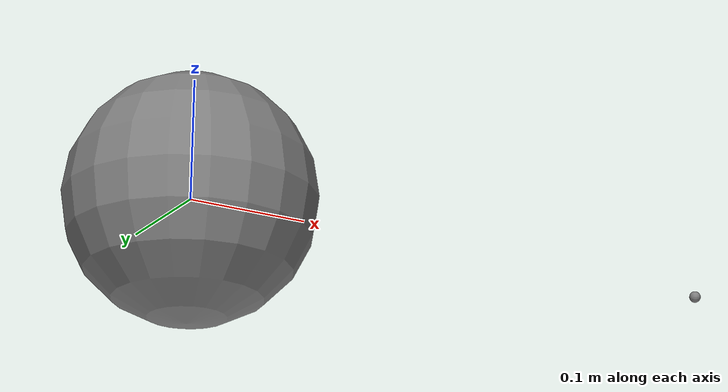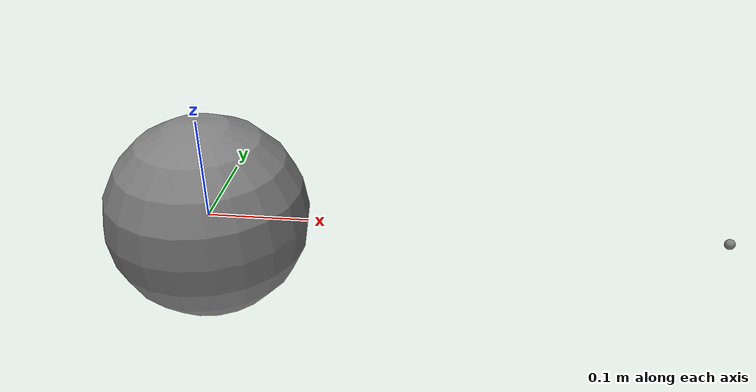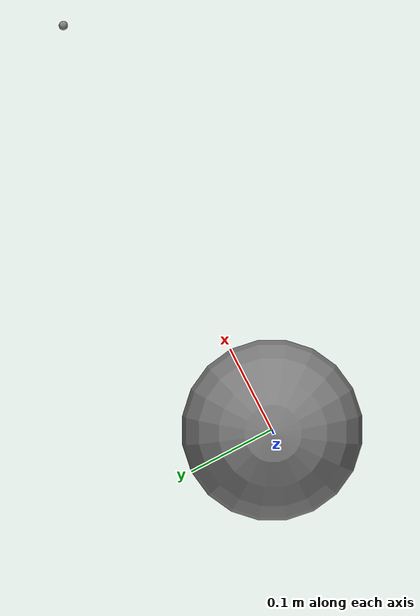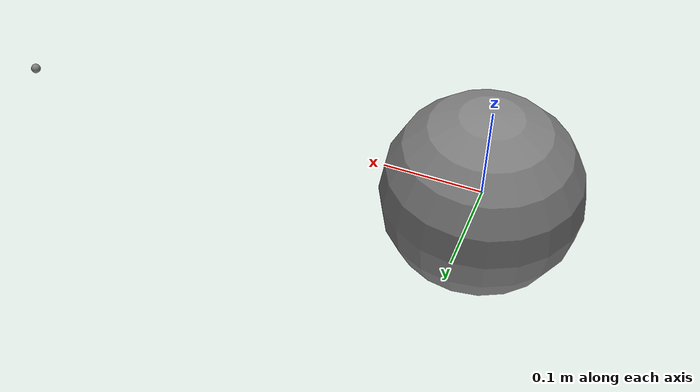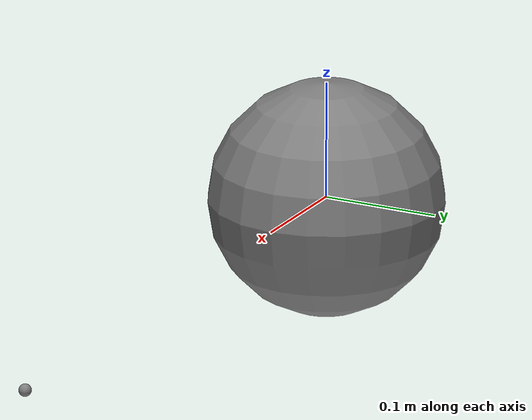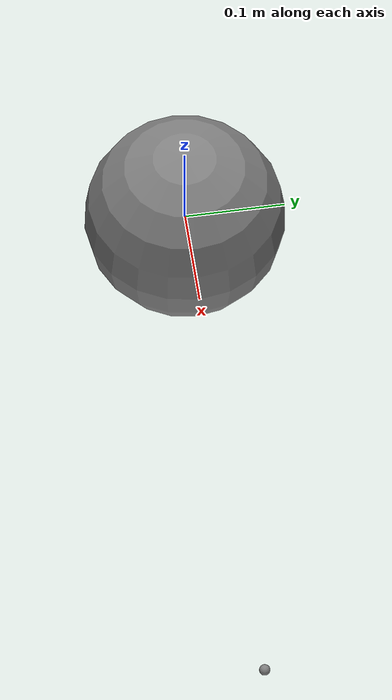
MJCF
<mujoco>
      <option gravity="0 0 0">
        <flag sensor="disable"/>
      </option>
      <worldbody>
        <body name="b1" pos="0 0 0">
          <joint name="j1" type="hinge" axis="0 0 1"/>
          <geom type="sphere" size="0.1" mass="1.0"/>
          <site name="s1" pos="0.5 0 0"/>
        </body>
      </worldbody>
      <sensor>
        <velocimeter site="s1"/>
        <subtreelinvel body="b1"/>
      </sensor>
    </mujoco>
